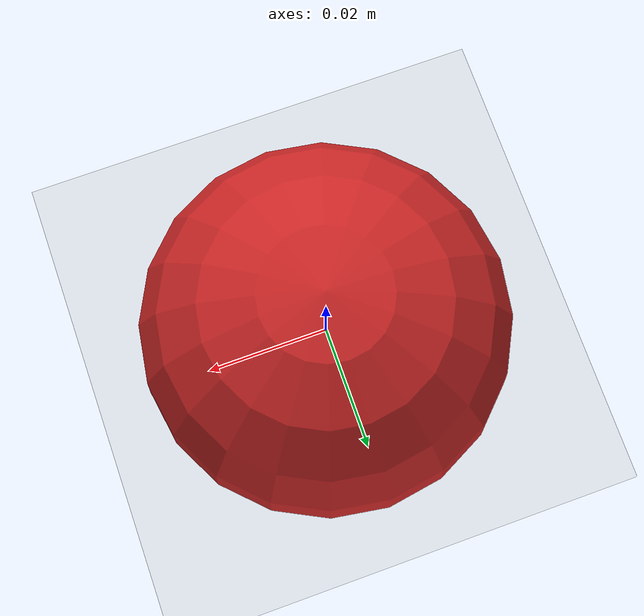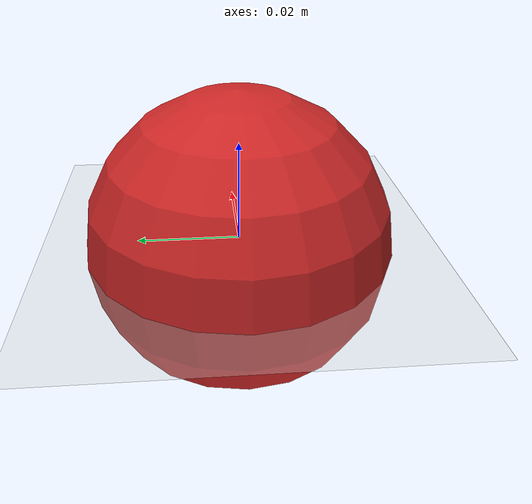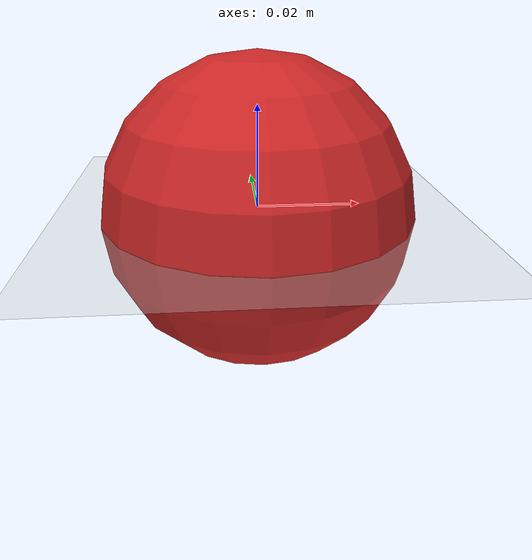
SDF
<sdf version="1.4">
  <world name="default">

    <scene>
      <ambient>0.4 0.4 0.4 1</ambient>
      <background>0.7 0.7 0.7 1</background>
      <shadows>true</shadows>
    </scene>

    <!-- A global light source -->
    <include>
      <uri>model://sun</uri>
    </include>

    <!-- A ground plane -->
    <include>
      <uri>model://ground_plane</uri>
    </include>

    <include>
      <uri>model://particle_sphere</uri>
      <name>bullet_1</name>
      <pose>0 0 0 0 0 0</pose>
    </include>

    <include>
      <uri>model://particle_sphere</uri>
      <name>bullet_2</name>
      <pose>0 0 0 0 0 0</pose>
    </include>

    <include>
      <uri>model://particle_sphere</uri>
      <name>bullet_3</name>
      <pose>0 0 0 0 0 0</pose>
    </include>

    <physics type="ode">
      <real_time_update_rate>1000.0</real_time_update_rate>
      <max_step_size>0.001</max_step_size>
      <real_time_factor>1</real_time_factor>
      <ode>
        <solver>
          <type>quick</type>
          <iters>150</iters>
          <precon_iters>0</precon_iters>
          <sor>1.400000</sor>
          <use_dynamic_moi_rescaling>1</use_dynamic_moi_rescaling>
        </solver>
        <constraints>
          <cfm>0.00001</cfm>
          <erp>0.2</erp>
          <contact_max_correcting_vel>2000.000000</contact_max_correcting_vel>
          <contact_surface_layer>0.01000</contact_surface_layer>
        </constraints>
      </ode>
    </physics>
  </world>

</sdf>

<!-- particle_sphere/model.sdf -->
<sdf version='1.4'>
  <model name="particle_sphere">
      <static>0</static>
      <link name='link'>
        <inertial>
          <mass>0.05</mass>
          <inertia>
            <ixx>9e-05</ixx>
            <ixy>0.000000</ixy>
            <ixz>0.000000</ixz>
            <iyy>9e-05</iyy>
            <iyz>0.000000</iyz>
            <izz>9e-05</izz>
          </inertia>
        </inertial>
        <collision name='collision'>
          <geometry>
            <sphere>
              <radius>0.03</radius>
            </sphere>
          </geometry>
          <surface>
            <friction>
              <ode>
                <mu>30.0</mu>
                <mu2>30.0</mu2>
              </ode>
            </friction>
            <contact>
              <ode>
                <kp>1000000.0</kp>
                <kd>100.0</kd>
                <max_vel>1.0</max_vel>
                <min_depth>0.002</min_depth>
              </ode>
            </contact>
          </surface>
        </collision>
        <visual name='visual'>
          <geometry>
            <sphere>
              <radius>0.03</radius>
            </sphere>
          </geometry>
          <material>
            <script>
              <uri>file://media/materials/scripts/gazebo.material</uri>
              <name>Gazebo/Red</name>
            </script>
          </material>
        </visual>
        <velocity_decay>
          <linear>0.000000</linear>
          <angular>0.000000</angular>
        </velocity_decay>
        <self_collide>0</self_collide>
        <kinematic>0</kinematic>
        <gravity>1</gravity>
      </link>
  </model>
</sdf>
